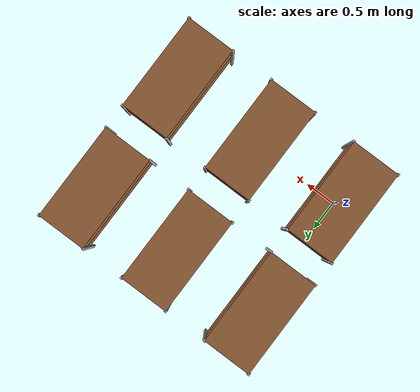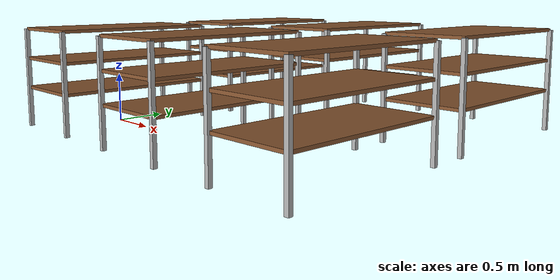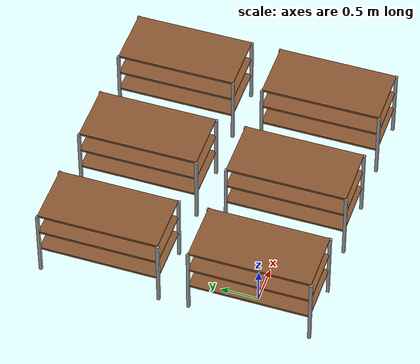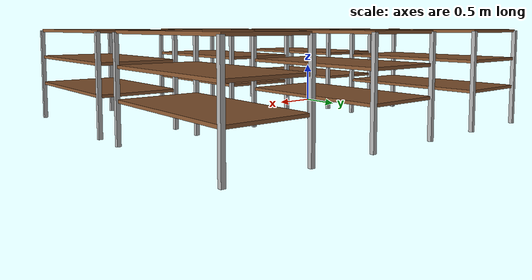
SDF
<?xml version='1.0'?>
<sdf version='1.7'>
  <model name='rack_set6'>
    <include>
        <name>rack0</name>
        <uri>model://rack_3shelves</uri>
        <pose> 0 0 0 0 0 1.57</pose>
    </include>

    <include>
        <name>palle1</name>
        <uri>model://rack_3shelves</uri>
        <pose> 1.5 0 0 0 0 1.57</pose>
    </include>

    <include>
        <name>rack2</name>
        <uri>model://rack_3shelves</uri>
        <pose> 3.0 0 0 0 0 1.57</pose>
    </include>

    <include>
        <name>rack3</name>
        <uri>model://rack_3shelves</uri>
        <pose> 0 2.0 0 0 0 1.57</pose>
    </include>

    <include>
        <name>rack4</name>
        <uri>model://rack_3shelves</uri>
        <pose> 1.5 2.0 0 0 0 1.57</pose>
    </include>

    <include>
        <name>rack5</name>
        <uri>model://rack_3shelves</uri>
        <pose> 3.0 2.0 0 0 0 1.57</pose>
    </include>
  </model>
</sdf>

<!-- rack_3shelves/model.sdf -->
<sdf version='1.7'>
  <model name='rack_3shelves'>

  <link name="surface0">
      <inertial>
          <mass>0.1</mass>
          <inertia>
              <ixx>0.00001</ixx>
              <ixy>0.000</ixy>
              <ixz>0.000</ixz>
              <iyy>0.00001</iyy>
              <iyz>0.000</iyz>
              <izz>0.00001</izz>
          </inertia>
      </inertial>
      <visual name='surface0_visual'>
        <pose relative_to=''>0 0 0.4 0 0 0</pose>
        <geometry>
          <box>
            <size>1.6 0.8 0.03</size>
          </box>
        </geometry>
        <material>
          <ambient>0.55 0.35 0.2 1</ambient>
          <diffuse>0.55 0.35 0.2 1</diffuse>
          <specular>0.1 0.1 0.1 1</specular>
          <emissive>0 0 0 1</emissive>
        </material>
        <transparency>0</transparency>
        <cast_shadows>1</cast_shadows>
      </visual>
      <collision name='surface0_collision'>
        <pose relative_to=''>0 0 0.4 0 0 0</pose>
        <laser_retro>0</laser_retro>
        <max_contacts>10</max_contacts>
        <geometry>
          <box>
            <size>1.6 0.8 0.03</size>
          </box>
        </geometry>
        <surface>
          <friction>
            <ode>
              <mu>inf</mu>
              <mu2>inf</mu2>
            </ode>
          </friction>
          <bounce>
            <restitution_coefficient>0</restitution_coefficient>
          </bounce>
          <contact>
            <ode>
              <kp>1e13</kp>
              <kd>1</kd>
            </ode>
          </contact>
        </surface>
      </collision>

      <visual name='surface1_visual'>
        <pose relative_to=''>0 0 0.7 0 0 0</pose>
        <geometry>
          <box>
            <size>1.6 0.8 0.03</size>
          </box>
        </geometry>
        <material>
          <ambient>0.55 0.35 0.2 1</ambient>
          <diffuse>0.55 0.35 0.2 1</diffuse>
          <specular>0.1 0.1 0.1 1</specular>
          <emissive>0 0 0 1</emissive>
        </material>
        <transparency>0</transparency>
        <cast_shadows>1</cast_shadows>
      </visual>
      <collision name='surface1_collision'>
        <pose relative_to=''>0 0 0.7 0 0 0</pose>
        <laser_retro>0</laser_retro>
        <max_contacts>10</max_contacts>
        <geometry>
          <box>
            <size>1.6 0.8 0.03</size>
          </box>
        </geometry>
        <surface>
          <friction>
            <ode>
              <mu>inf</mu>
              <mu2>inf</mu2>
            </ode>
          </friction>
          <bounce>
            <restitution_coefficient>0</restitution_coefficient>
          </bounce>
          <contact>
            <ode>
              <kp>1e13</kp>
              <kd>1</kd>
            </ode>
          </contact>
        </surface>
      </collision>

      <visual name='surface2_visual'>
        <pose relative_to=''>0 0 1.0 0 0 0</pose>
        <geometry>
          <box>
            <size>1.6 0.8 0.03</size>
          </box>
        </geometry>
        <material>
          <ambient>0.55 0.35 0.2 1</ambient>
          <diffuse>0.55 0.35 0.2 1</diffuse>
          <specular>0.1 0.1 0.1 1</specular>
          <emissive>0 0 0 1</emissive>
        </material>
        <transparency>0</transparency>
        <cast_shadows>1</cast_shadows>
      </visual>
      <collision name='surface2_collision'>
        <pose relative_to=''>0 0 1.0 0 0 0</pose>
        <laser_retro>0</laser_retro>
        <max_contacts>10</max_contacts>
        <geometry>
          <box>
            <size>1.6 0.8 0.03</size>
          </box>
        </geometry>
        <surface>
          <friction>
            <ode>
              <mu>inf</mu>
              <mu2>inf</mu2>
            </ode>
          </friction>
          <bounce>
            <restitution_coefficient>0</restitution_coefficient>
          </bounce>
          <contact>
            <ode>
              <kp>1e13</kp>
              <kd>1</kd>
            </ode>
          </contact>
        </surface>
      </collision>

      <visual name='front_left_leg_visual'>
        <pose relative_to=''>0.8 0.4 0.5 0 0 0</pose>
        <geometry>
          <box>
            <size>0.04 0.04 1.0</size>
          </box>
        </geometry>
        <material>
          <ambient>0.3 0.3 0.3 1</ambient>
          <diffuse>0.7 0.7 0.7 1</diffuse>
          <specular>0.01 0.01 0.01 1</specular>
          <emissive>0 0 0 1</emissive>
          <pbr>
            <metal>
              <roughness>0.8</roughness>
              <metalness>0.1</metalness>
            </metal>
          </pbr>
        </material>
        <cast_shadows>1</cast_shadows>
      </visual>
      <collision name='front_left_leg_collision'>
        <pose relative_to=''>0.8 0.4 0.5 0 0 0</pose>
        <laser_retro>0</laser_retro>
        <max_contacts>10</max_contacts>
        <geometry>
          <box>
            <size>0.04 0.04 1.0</size>
          </box>
        </geometry>
        <surface>
          <friction>
            <ode>
              <mu>0.1</mu>
              <mu2>0.1</mu2>
            </ode>
          </friction>
          <bounce>
            <restitution_coefficient>0</restitution_coefficient>
          </bounce>
          <contact>
            <ode>
              <kp>1e6</kp>
              <kd>1</kd>
            </ode>
          </contact>
        </surface>
      </collision>

      <visual name='front_right_leg_visual'>
        <pose relative_to=''>0.8 -0.4 0.5 0 0 0</pose>
        <geometry>
          <box>
            <size>0.04 0.04 1.0</size>
          </box>
        </geometry>
        <material>
          <ambient>0.3 0.3 0.3 1</ambient>
          <diffuse>0.7 0.7 0.7 1</diffuse>
          <specular>0.01 0.01 0.01 1</specular>
          <emissive>0 0 0 1</emissive>
          <pbr>
            <metal>
              <roughness>0.8</roughness>
              <metalness>0.1</metalness>
            </metal>
          </pbr>
        </material>
        <cast_shadows>1</cast_shadows>
      </visual>
      <collision name='front_right_leg_collision'>
        <pose relative_to=''>0.8 -0.4 0.5 0 0 0</pose>
        <laser_retro>0</laser_retro>
        <max_contacts>10</max_contacts>
        <geometry>
          <box>
            <size>0.04 0.04 1.0</size>
          </box>
        </geometry>
        <surface>
          <friction>
            <ode>
              <mu>0.1</mu>
              <mu2>0.1</mu2>
            </ode>
          </friction>
          <bounce>
            <restitution_coefficient>0</restitution_coefficient>
          </bounce>
          <contact>
            <ode>
              <kp>1e6</kp>
              <kd>1</kd>
            </ode>
          </contact>
        </surface>
      </collision>

      <visual name='back_left_leg_visual'>
        <pose relative_to=''>-0.8 0.4 0.5 0 0 0</pose>
        <geometry>
          <box>
            <size>0.04 0.04 1.0</size>
          </box>
        </geometry>
        <material>
          <ambient>0.3 0.3 0.3 1</ambient>
          <diffuse>0.7 0.7 0.7 1</diffuse>
          <specular>0.01 0.01 0.01 1</specular>
          <emissive>0 0 0 1</emissive>
          <pbr>
            <metal>
              <roughness>0.8</roughness>
              <metalness>0.1</metalness>
            </metal>
          </pbr>
        </material>
        <cast_shadows>1</cast_shadows>
      </visual>
      <collision name='back_left_leg_collision'>
        <pose relative_to=''>-0.8 0.4 0.5 0 0 0</pose>
        <laser_retro>0</laser_retro>
        <max_contacts>10</max_contacts>
        <geometry>
          <box>
            <size>0.04 0.04 1.0</size>
          </box>
        </geometry>
        <surface>
          <friction>
            <ode>
              <mu>0.1</mu>
              <mu2>0.1</mu2>
            </ode>
          </friction>
          <bounce>
            <restitution_coefficient>0</restitution_coefficient>
          </bounce>
          <contact>
            <ode>
              <kp>1e6</kp>
              <kd>1</kd>
            </ode>
          </contact>
        </surface>
      </collision>

      <visual name='back_right_leg_visual'>
        <pose relative_to=''>-0.8 -0.4 0.5 0 0 0</pose>
        <geometry>
          <box>
            <size>0.04 0.04 1.0</size>
          </box>
        </geometry>
        <material>
          <ambient>0.3 0.3 0.3 1</ambient>
          <diffuse>0.7 0.7 0.7 1</diffuse>
          <specular>0.01 0.01 0.01 1</specular>
          <emissive>0 0 0 1</emissive>
          <pbr>
            <metal>
              <roughness>0.8</roughness>
              <metalness>0.1</metalness>
            </metal>
          </pbr>
        </material>
        <cast_shadows>1</cast_shadows>
      </visual>
      <collision name='back_right_leg_collision'>
        <pose relative_to=''>-0.8 -0.4 0.5 0 0 0</pose>
        <laser_retro>0</laser_retro>
        <max_contacts>10</max_contacts>
        <geometry>
          <box>
            <size>0.04 0.04 1.0</size>
          </box>
        </geometry>
        <surface>
          <friction>
            <ode>
              <mu>0.1</mu>
              <mu2>0.1</mu2>
            </ode>
          </friction>
          <bounce>
            <restitution_coefficient>0</restitution_coefficient>
          </bounce>
          <contact>
            <ode>
              <kp>1e6</kp>
              <kd>1</kd>
            </ode>
          </contact>
        </surface>
      </collision>
    </link>
  </model>
</sdf>
